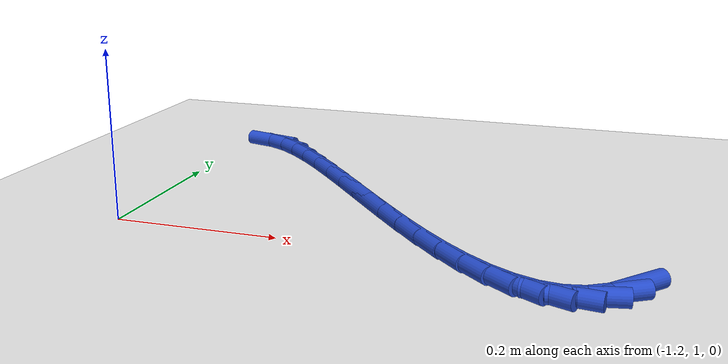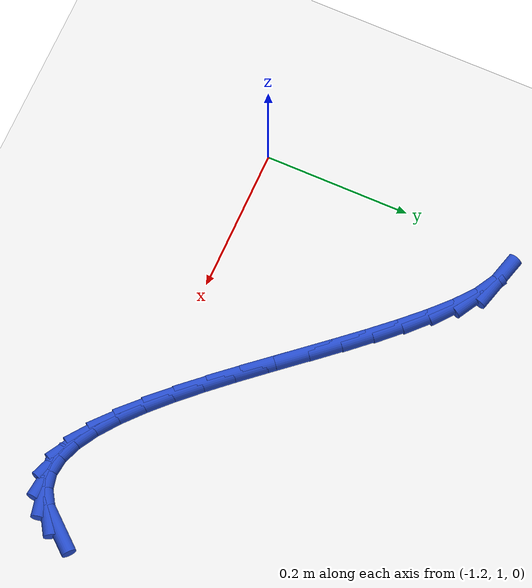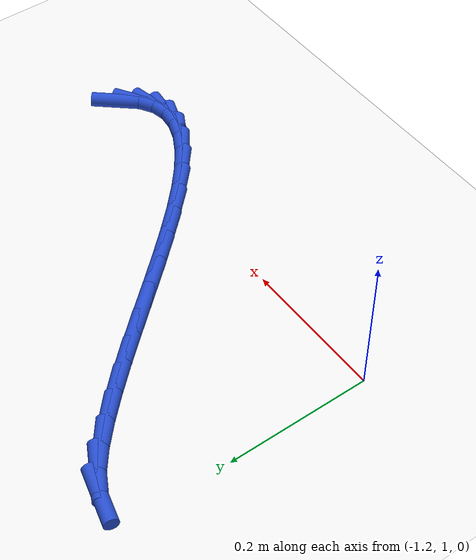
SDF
<sdf version="1.6">
 <world name="default">
  <model name="ground_plane">
   <static>1</static>
   <link name="link">
    <collision name="collision">
     <geometry><plane><normal>0 0 1</normal><size>100 100</size></plane></geometry>
     <surface><friction><ode><mu>100</mu><mu2>50</mu2></ode></friction></surface>
    </collision>
    <visual name="visual">
     <cast_shadows>0</cast_shadows>
     <geometry><plane><normal>0 0 1</normal><size>100 100</size></plane></geometry>
     <material>
      <script><uri>file://media/materials/scripts/gazebo.material</uri><name>Gazebo/WhiteGlow</name></script>
     </material>
    </visual>
   </link>
  </model>
  <model name="line">
   <link name="link_37">
    <pose>-0.6172555578836 0.9637179235494869 0.01 0 1.57 0.8541976067570057</pose>
    <collision name="collision">
     <geometry><cylinder><radius>0.01</radius><length>0.08</length></cylinder></geometry>
    </collision>
    <visual name="visual">
     <material>
      <script><name>Gazebo/Blue</name><uri>file://media/materials/scripts/gazebo.material</uri></script>
     </material>
     <geometry><cylinder><radius>0.01</radius><length>0.08</length></cylinder></geometry>
    </visual>
   </link>
   <link name="link_38">
    <pose>-0.6360230160107025 0.942172583022034 0.01 0 1.57 0.5500863840229262</pose>
    <collision name="collision">
     <geometry><cylinder><radius>0.01</radius><length>0.08</length></cylinder></geometry>
    </collision>
    <visual name="visual">
     <material>
      <script><name>Gazebo/Blue</name><uri>file://media/materials/scripts/gazebo.material</uri></script>
     </material>
     <geometry><cylinder><radius>0.01</radius><length>0.08</length></cylinder></geometry>
    </visual>
   </link>
   <link name="link_39">
    <pose>-0.656670785221348 0.9295108738431355 0.01 0 1.57 0.2004663293223428</pose>
    <collision name="collision">
     <geometry><cylinder><radius>0.01</radius><length>0.08</length></cylinder></geometry>
    </collision>
    <visual name="visual">
     <material>
      <script><name>Gazebo/Blue</name><uri>file://media/materials/scripts/gazebo.material</uri></script>
     </material>
     <geometry><cylinder><radius>0.01</radius><length>0.08</length></cylinder></geometry>
    </visual>
   </link>
   <link name="link_40">
    <pose>-0.6790254447408911 0.9249685059957651 0.01 0 1.57 -0.11720434471533314</pose>
    <collision name="collision">
     <geometry><cylinder><radius>0.01</radius><length>0.08</length></cylinder></geometry>
    </collision>
    <visual name="visual">
     <material>
      <script><name>Gazebo/Blue</name><uri>file://media/materials/scripts/gazebo.material</uri></script>
     </material>
     <geometry><cylinder><radius>0.01</radius><length>0.08</length></cylinder></geometry>
    </visual>
   </link>
   <link name="link_41">
    <pose>-0.7029135737946874 0.9277811894628979 0.01 0 1.57 -0.3565248666928859</pose>
    <collision name="collision">
     <geometry><cylinder><radius>0.01</radius><length>0.08</length></cylinder></geometry>
    </collision>
    <visual name="visual">
     <material>
      <script><name>Gazebo/Blue</name><uri>file://media/materials/scripts/gazebo.material</uri></script>
     </material>
     <geometry><cylinder><radius>0.01</radius><length>0.08</length></cylinder></geometry>
    </visual>
   </link>
   <link name="link_42">
    <pose>-0.7281617516080922 0.9371846342275075 0.01 0 1.57 -0.5226839813775308</pose>
    <collision name="collision">
     <geometry><cylinder><radius>0.01</radius><length>0.08</length></cylinder></geometry>
    </collision>
    <visual name="visual">
     <material>
      <script><name>Gazebo/Blue</name><uri>file://media/materials/scripts/gazebo.material</uri></script>
     </material>
     <geometry><cylinder><radius>0.01</radius><length>0.08</length></cylinder></geometry>
    </visual>
   </link>
   <link name="link_43">
    <pose>-0.7545965574064611 0.9524145502725689 0.01 0 1.57 -0.636612712445648</pose>
    <collision name="collision">
     <geometry><cylinder><radius>0.01</radius><length>0.08</length></cylinder></geometry>
    </collision>
    <visual name="visual">
     <material>
      <script><name>Gazebo/Blue</name><uri>file://media/materials/scripts/gazebo.material</uri></script>
     </material>
     <geometry><cylinder><radius>0.01</radius><length>0.08</length></cylinder></geometry>
    </visual>
   </link>
   <link name="link_44">
    <pose>-0.7820445704151485 0.972706647581056 0.01 0 1.57 -0.7155805565808642</pose>
    <collision name="collision">
     <geometry><cylinder><radius>0.01</radius><length>0.08</length></cylinder></geometry>
    </collision>
    <visual name="visual">
     <material>
      <script><name>Gazebo/Blue</name><uri>file://media/materials/scripts/gazebo.material</uri></script>
     </material>
     <geometry><cylinder><radius>0.01</radius><length>0.08</length></cylinder></geometry>
    </visual>
   </link>
   <link name="link_45">
    <pose>-0.810332369859511 0.9972966361359433 0.01 0 1.57 -0.7708475437157227</pose>
    <collision name="collision">
     <geometry><cylinder><radius>0.01</radius><length>0.08</length></cylinder></geometry>
    </collision>
    <visual name="visual">
     <material>
      <script><name>Gazebo/Blue</name><uri>file://media/materials/scripts/gazebo.material</uri></script>
     </material>
     <geometry><cylinder><radius>0.01</radius><length>0.08</length></cylinder></geometry>
    </visual>
   </link>
   <link name="link_46">
    <pose>-0.8392865349649027 1.025420225920205 0.01 0 1.57 -0.8093543144175936</pose>
    <collision name="collision">
     <geometry><cylinder><radius>0.01</radius><length>0.08</length></cylinder></geometry>
    </collision>
    <visual name="visual">
     <material>
      <script><name>Gazebo/Blue</name><uri>file://media/materials/scripts/gazebo.material</uri></script>
     </material>
     <geometry><cylinder><radius>0.01</radius><length>0.08</length></cylinder></geometry>
    </visual>
   </link>
   <link name="link_47">
    <pose>-0.86873364495668 1.056313126916816 0.01 0 1.57 -0.8353256821414923</pose>
    <collision name="collision">
     <geometry><cylinder><radius>0.01</radius><length>0.08</length></cylinder></geometry>
    </collision>
    <visual name="visual">
     <material>
      <script><name>Gazebo/Blue</name><uri>file://media/materials/scripts/gazebo.material</uri></script>
     </material>
     <geometry><cylinder><radius>0.01</radius><length>0.08</length></cylinder></geometry>
    </visual>
   </link>
   <link name="link_48">
    <pose>-0.8985002790601978 1.0892110491087503 0.01 0 1.57 -0.8512796391164228</pose>
    <collision name="collision">
     <geometry><cylinder><radius>0.01</radius><length>0.08</length></cylinder></geometry>
    </collision>
    <visual name="visual">
     <material>
      <script><name>Gazebo/Blue</name><uri>file://media/materials/scripts/gazebo.material</uri></script>
     </material>
     <geometry><cylinder><radius>0.01</radius><length>0.08</length></cylinder></geometry>
    </visual>
   </link>
   <link name="link_49">
    <pose>-0.9284130165008108 1.1233497024789816 0.01 0 1.57 -0.8585948615771395</pose>
    <collision name="collision">
     <geometry><cylinder><radius>0.01</radius><length>0.08</length></cylinder></geometry>
    </collision>
    <visual name="visual">
     <material>
      <script><name>Gazebo/Blue</name><uri>file://media/materials/scripts/gazebo.material</uri></script>
     </material>
     <geometry><cylinder><radius>0.01</radius><length>0.08</length></cylinder></geometry>
    </visual>
   </link>
   <link name="link_50">
    <pose>-0.9582984365038754 1.1579647970104854 0.01 0 1.57 -0.8577979417933926</pose>
    <collision name="collision">
     <geometry><cylinder><radius>0.01</radius><length>0.08</length></cylinder></geometry>
    </collision>
    <visual name="visual">
     <material>
      <script><name>Gazebo/Blue</name><uri>file://media/materials/scripts/gazebo.material</uri></script>
     </material>
     <geometry><cylinder><radius>0.01</radius><length>0.08</length></cylinder></geometry>
    </visual>
   </link>
   <link name="link_51">
    <pose>-0.987983118294746 1.192292042686235 0.01 0 1.57 -0.8486601893002543</pose>
    <collision name="collision">
     <geometry><cylinder><radius>0.01</radius><length>0.08</length></cylinder></geometry>
    </collision>
    <visual name="visual">
     <material>
      <script><name>Gazebo/Blue</name><uri>file://media/materials/scripts/gazebo.material</uri></script>
     </material>
     <geometry><cylinder><radius>0.01</radius><length>0.08</length></cylinder></geometry>
    </visual>
   </link>
   <link name="link_52">
    <pose>-1.017293641098779 1.2255671494892055 0.01 0 1.57 -0.8301318726310187</pose>
    <collision name="collision">
     <geometry><cylinder><radius>0.01</radius><length>0.08</length></cylinder></geometry>
    </collision>
    <visual name="visual">
     <material>
      <script><name>Gazebo/Blue</name><uri>file://media/materials/scripts/gazebo.material</uri></script>
     </material>
     <geometry><cylinder><radius>0.01</radius><length>0.08</length></cylinder></geometry>
    </visual>
   </link>
   <link name="link_53">
    <pose>-1.0460565841413283 1.257025827402371 0.01 0 1.57 -0.8000847030574295</pose>
    <collision name="collision">
     <geometry><cylinder><radius>0.01</radius><length>0.08</length></cylinder></geometry>
    </collision>
    <visual name="visual">
     <material>
      <script><name>Gazebo/Blue</name><uri>file://media/materials/scripts/gazebo.material</uri></script>
     </material>
     <geometry><cylinder><radius>0.01</radius><length>0.08</length></cylinder></geometry>
    </visual>
   </link>
   <link name="link_54">
    <pose>-1.0740985266477505 1.2859037864087057 0.01 0 1.57 -0.7547426580482212</pose>
    <collision name="collision">
     <geometry><cylinder><radius>0.01</radius><length>0.08</length></cylinder></geometry>
    </collision>
    <visual name="visual">
     <material>
      <script><name>Gazebo/Blue</name><uri>file://media/materials/scripts/gazebo.material</uri></script>
     </material>
     <geometry><cylinder><radius>0.01</radius><length>0.08</length></cylinder></geometry>
    </visual>
   </link>
   <link name="link_55">
    <pose>-1.101246624327494 1.3114364234628753 0.01 0 1.57 -0.6736233895597995</pose>
    <collision name="collision">
     <geometry><cylinder><radius>0.01</radius><length>0.08</length></cylinder></geometry>
    </collision>
    <visual name="visual">
     <material>
      <script><name>Gazebo/Blue</name><uri>file://media/materials/scripts/gazebo.material</uri></script>
     </material>
     <geometry><cylinder><radius>0.01</radius><length>0.08</length></cylinder></geometry>
    </visual>
   </link>
   <link name="link_56">
    <pose>-1.1277793900611097 1.3326140505756454 0.01 0 1.57 -0.5036618672845306</pose>
    <collision name="collision">
     <geometry><cylinder><radius>0.01</radius><length>0.08</length></cylinder></geometry>
    </collision>
    <visual name="visual">
     <material>
      <script><name>Gazebo/Blue</name><uri>file://media/materials/scripts/gazebo.material</uri></script>
     </material>
     <geometry><cylinder><radius>0.01</radius><length>0.08</length></cylinder></geometry>
    </visual>
   </link>
   <link name="link_57">
    <pose>-1.1552344455231465 1.3477436195968044 0.01 0 1.57 -0.2592143617377638</pose>
    <collision name="collision">
     <geometry><cylinder><radius>0.01</radius><length>0.08</length></cylinder></geometry>
    </collision>
    <visual name="visual">
     <material>
      <script><name>Gazebo/Blue</name><uri>file://media/materials/scripts/gazebo.material</uri></script>
     </material>
     <geometry><cylinder><radius>0.01</radius><length>0.08</length></cylinder></geometry>
    </visual>
   </link>
  </model>
 </world>
</sdf>
